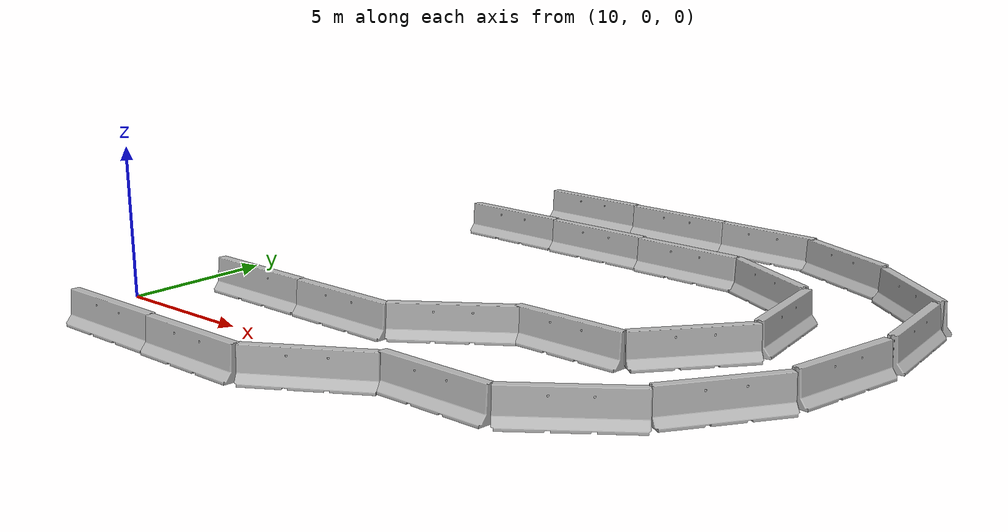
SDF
<sdf version="1.6">
 <world name="default">
  <model name="jersey_barrier_clone_5_clone_clone_0">
   <static>1</static>
   <link name="link">
    <visual name="visual">
     <geometry>
      <mesh><uri>model://jersey_barrier/meshes/jersey_barrier.dae</uri><scale>1 1 1</scale></mesh>
     </geometry>
    </visual>
    <collision name="upright">
     <pose>0 0 0.5715 0 -0 0</pose>
     <geometry><box><size>4.06542 0.3063 1.143</size></box></geometry>
    </collision>
    <collision name="base">
     <pose>0 0 0.032258 0 -0 0</pose>
     <geometry><box><size>4.06542 0.8107 0.064516</size></box></geometry>
    </collision>
    <collision name="base2">
     <pose>0 0 0.1 0 -0 0</pose>
     <geometry><box><size>4.06542 0.65 0.1</size></box></geometry>
    </collision>
    <collision name="base3">
     <pose>0 0 0.2 0 -0 0</pose>
     <geometry><box><size>4.06542 0.5 0.1</size></box></geometry>
    </collision>
    <collision name="left-angle">
     <pose>0 -0.224 0.2401 0.9 -0 0</pose>
     <geometry><box><size>4.06542 0.5 0.064516</size></box></geometry>
    </collision>
    <collision name="right-angle">
     <pose>0 0.224 0.2401 -0.9 0 0</pose>
     <geometry><box><size>4.06542 0.5 0.064516</size></box></geometry>
    </collision>
    <velocity_decay><linear>0</linear><angular>0</angular></velocity_decay>
   </link>
   <pose>12.9787 -2.89825 -0.025828 -0.021605 -0.003365 -0.015417</pose>
  </model>
  <model name="jersey_barrier_clone_5_clone_clone_1">
   <static>1</static>
   <link name="link">
    <visual name="visual">
     <geometry>
      <mesh><uri>model://jersey_barrier/meshes/jersey_barrier.dae</uri><scale>1 1 1</scale></mesh>
     </geometry>
    </visual>
    <collision name="upright">
     <pose>0 0 0.5715 0 -0 0</pose>
     <geometry><box><size>4.06542 0.3063 1.143</size></box></geometry>
    </collision>
    <collision name="base">
     <pose>0 0 0.032258 0 -0 0</pose>
     <geometry><box><size>4.06542 0.8107 0.064516</size></box></geometry>
    </collision>
    <collision name="base2">
     <pose>0 0 0.1 0 -0 0</pose>
     <geometry><box><size>4.06542 0.65 0.1</size></box></geometry>
    </collision>
    <collision name="base3">
     <pose>0 0 0.2 0 -0 0</pose>
     <geometry><box><size>4.06542 0.5 0.1</size></box></geometry>
    </collision>
    <collision name="left-angle">
     <pose>0 -0.224 0.2401 0.9 -0 0</pose>
     <geometry><box><size>4.06542 0.5 0.064516</size></box></geometry>
    </collision>
    <collision name="right-angle">
     <pose>0 0.224 0.2401 -0.9 0 0</pose>
     <geometry><box><size>4.06542 0.5 0.064516</size></box></geometry>
    </collision>
    <velocity_decay><linear>0</linear><angular>0</angular></velocity_decay>
   </link>
   <pose>16.9915 -3.00236 -0.025828 -0.021605 -0.003365 -0.015417</pose>
  </model>
  <model name="jersey_barrier_clone_5_clone_clone_2">
   <static>1</static>
   <link name="link">
    <visual name="visual">
     <geometry>
      <mesh><uri>model://jersey_barrier/meshes/jersey_barrier.dae</uri><scale>1 1 1</scale></mesh>
     </geometry>
    </visual>
    <collision name="upright">
     <pose>0 0 0.5715 0 -0 0</pose>
     <geometry><box><size>4.06542 0.3063 1.143</size></box></geometry>
    </collision>
    <collision name="base">
     <pose>0 0 0.032258 0 -0 0</pose>
     <geometry><box><size>4.06542 0.8107 0.064516</size></box></geometry>
    </collision>
    <collision name="base2">
     <pose>0 0 0.1 0 -0 0</pose>
     <geometry><box><size>4.06542 0.65 0.1</size></box></geometry>
    </collision>
    <collision name="base3">
     <pose>0 0 0.2 0 -0 0</pose>
     <geometry><box><size>4.06542 0.5 0.1</size></box></geometry>
    </collision>
    <collision name="left-angle">
     <pose>0 -0.224 0.2401 0.9 -0 0</pose>
     <geometry><box><size>4.06542 0.5 0.064516</size></box></geometry>
    </collision>
    <collision name="right-angle">
     <pose>0 0.224 0.2401 -0.9 0 0</pose>
     <geometry><box><size>4.06542 0.5 0.064516</size></box></geometry>
    </collision>
    <velocity_decay><linear>0</linear><angular>0</angular></velocity_decay>
   </link>
   <pose>20.7284 -1.89385 -0.047574 -0.019944 0.008963 0.561368</pose>
  </model>
  <model name="jersey_barrier_clone_5_clone_clone_6">
   <static>1</static>
   <link name="link">
    <visual name="visual">
     <geometry>
      <mesh><uri>model://jersey_barrier/meshes/jersey_barrier.dae</uri><scale>1 1 1</scale></mesh>
     </geometry>
    </visual>
    <collision name="upright">
     <pose>0 0 0.5715 0 -0 0</pose>
     <geometry><box><size>4.06542 0.3063 1.143</size></box></geometry>
    </collision>
    <collision name="base">
     <pose>0 0 0.032258 0 -0 0</pose>
     <geometry><box><size>4.06542 0.8107 0.064516</size></box></geometry>
    </collision>
    <collision name="base2">
     <pose>0 0 0.1 0 -0 0</pose>
     <geometry><box><size>4.06542 0.65 0.1</size></box></geometry>
    </collision>
    <collision name="base3">
     <pose>0 0 0.2 0 -0 0</pose>
     <geometry><box><size>4.06542 0.5 0.1</size></box></geometry>
    </collision>
    <collision name="left-angle">
     <pose>0 -0.224 0.2401 0.9 -0 0</pose>
     <geometry><box><size>4.06542 0.5 0.064516</size></box></geometry>
    </collision>
    <collision name="right-angle">
     <pose>0 0.224 0.2401 -0.9 0 0</pose>
     <geometry><box><size>4.06542 0.5 0.064516</size></box></geometry>
    </collision>
    <velocity_decay><linear>0</linear><angular>0</angular></velocity_decay>
   </link>
   <pose>13.4209 2.40844 -0.025828 -0.021605 -0.003365 -0.015417</pose>
  </model>
  <model name="jersey_barrier_clone_5_clone_clone_7">
   <static>1</static>
   <link name="link">
    <visual name="visual">
     <geometry>
      <mesh><uri>model://jersey_barrier/meshes/jersey_barrier.dae</uri><scale>1 1 1</scale></mesh>
     </geometry>
    </visual>
    <collision name="upright">
     <pose>0 0 0.5715 0 -0 0</pose>
     <geometry><box><size>4.06542 0.3063 1.143</size></box></geometry>
    </collision>
    <collision name="base">
     <pose>0 0 0.032258 0 -0 0</pose>
     <geometry><box><size>4.06542 0.8107 0.064516</size></box></geometry>
    </collision>
    <collision name="base2">
     <pose>0 0 0.1 0 -0 0</pose>
     <geometry><box><size>4.06542 0.65 0.1</size></box></geometry>
    </collision>
    <collision name="base3">
     <pose>0 0 0.2 0 -0 0</pose>
     <geometry><box><size>4.06542 0.5 0.1</size></box></geometry>
    </collision>
    <collision name="left-angle">
     <pose>0 -0.224 0.2401 0.9 -0 0</pose>
     <geometry><box><size>4.06542 0.5 0.064516</size></box></geometry>
    </collision>
    <collision name="right-angle">
     <pose>0 0.224 0.2401 -0.9 0 0</pose>
     <geometry><box><size>4.06542 0.5 0.064516</size></box></geometry>
    </collision>
    <velocity_decay><linear>0</linear><angular>0</angular></velocity_decay>
   </link>
   <pose>17.4174 2.35538 -0.033305 -0.021605 -0.003365 -0.015417</pose>
  </model>
  <model name="jersey_barrier_clone_5_clone_clone_8">
   <static>1</static>
   <link name="link">
    <visual name="visual">
     <geometry>
      <mesh><uri>model://jersey_barrier/meshes/jersey_barrier.dae</uri><scale>1 1 1</scale></mesh>
     </geometry>
    </visual>
    <collision name="upright">
     <pose>0 0 0.5715 0 -0 0</pose>
     <geometry><box><size>4.06542 0.3063 1.143</size></box></geometry>
    </collision>
    <collision name="base">
     <pose>0 0 0.032258 0 -0 0</pose>
     <geometry><box><size>4.06542 0.8107 0.064516</size></box></geometry>
    </collision>
    <collision name="base2">
     <pose>0 0 0.1 0 -0 0</pose>
     <geometry><box><size>4.06542 0.65 0.1</size></box></geometry>
    </collision>
    <collision name="base3">
     <pose>0 0 0.2 0 -0 0</pose>
     <geometry><box><size>4.06542 0.5 0.1</size></box></geometry>
    </collision>
    <collision name="left-angle">
     <pose>0 -0.224 0.2401 0.9 -0 0</pose>
     <geometry><box><size>4.06542 0.5 0.064516</size></box></geometry>
    </collision>
    <collision name="right-angle">
     <pose>0 0.224 0.2401 -0.9 0 0</pose>
     <geometry><box><size>4.06542 0.5 0.064516</size></box></geometry>
    </collision>
    <velocity_decay><linear>0</linear><angular>0</angular></velocity_decay>
   </link>
   <pose>20.9753 3.57828 -0.025828 -0.01915 0.010554 0.64269</pose>
  </model>
  <model name="jersey_barrier_clone_5_clone_clone_9">
   <static>1</static>
   <link name="link">
    <visual name="visual">
     <geometry>
      <mesh><uri>model://jersey_barrier/meshes/jersey_barrier.dae</uri><scale>1 1 1</scale></mesh>
     </geometry>
    </visual>
    <collision name="upright">
     <pose>0 0 0.5715 0 -0 0</pose>
     <geometry><box><size>4.06542 0.3063 1.143</size></box></geometry>
    </collision>
    <collision name="base">
     <pose>0 0 0.032258 0 -0 0</pose>
     <geometry><box><size>4.06542 0.8107 0.064516</size></box></geometry>
    </collision>
    <collision name="base2">
     <pose>0 0 0.1 0 -0 0</pose>
     <geometry><box><size>4.06542 0.65 0.1</size></box></geometry>
    </collision>
    <collision name="base3">
     <pose>0 0 0.2 0 -0 0</pose>
     <geometry><box><size>4.06542 0.5 0.1</size></box></geometry>
    </collision>
    <collision name="left-angle">
     <pose>0 -0.224 0.2401 0.9 -0 0</pose>
     <geometry><box><size>4.06542 0.5 0.064516</size></box></geometry>
    </collision>
    <collision name="right-angle">
     <pose>0 0.224 0.2401 -0.9 0 0</pose>
     <geometry><box><size>4.06542 0.5 0.064516</size></box></geometry>
    </collision>
    <velocity_decay><linear>0</linear><angular>0</angular></velocity_decay>
   </link>
   <pose>24.4366 -0.784009 -0.025828 -0.021605 -0.003365 -0.015417</pose>
  </model>
  <model name="jersey_barrier_clone_5_clone_clone_10">
   <static>1</static>
   <link name="link">
    <visual name="visual">
     <geometry>
      <mesh><uri>model://jersey_barrier/meshes/jersey_barrier.dae</uri><scale>1 1 1</scale></mesh>
     </geometry>
    </visual>
    <collision name="upright">
     <pose>0 0 0.5715 0 -0 0</pose>
     <geometry><box><size>4.06542 0.3063 1.143</size></box></geometry>
    </collision>
    <collision name="base">
     <pose>0 0 0.032258 0 -0 0</pose>
     <geometry><box><size>4.06542 0.8107 0.064516</size></box></geometry>
    </collision>
    <collision name="base2">
     <pose>0 0 0.1 0 -0 0</pose>
     <geometry><box><size>4.06542 0.65 0.1</size></box></geometry>
    </collision>
    <collision name="base3">
     <pose>0 0 0.2 0 -0 0</pose>
     <geometry><box><size>4.06542 0.5 0.1</size></box></geometry>
    </collision>
    <collision name="left-angle">
     <pose>0 -0.224 0.2401 0.9 -0 0</pose>
     <geometry><box><size>4.06542 0.5 0.064516</size></box></geometry>
    </collision>
    <collision name="right-angle">
     <pose>0 0.224 0.2401 -0.9 0 0</pose>
     <geometry><box><size>4.06542 0.5 0.064516</size></box></geometry>
    </collision>
    <velocity_decay><linear>0</linear><angular>0</angular></velocity_decay>
   </link>
   <pose>24.4589 4.76762 -0.025828 -0.021605 -0.003365 -0.015417</pose>
  </model>
  <model name="jersey_barrier_clone_5_clone_clone_11">
   <static>1</static>
   <link name="link">
    <visual name="visual">
     <geometry>
      <mesh><uri>model://jersey_barrier/meshes/jersey_barrier.dae</uri><scale>1 1 1</scale></mesh>
     </geometry>
    </visual>
    <collision name="upright">
     <pose>0 0 0.5715 0 -0 0</pose>
     <geometry><box><size>4.06542 0.3063 1.143</size></box></geometry>
    </collision>
    <collision name="base">
     <pose>0 0 0.032258 0 -0 0</pose>
     <geometry><box><size>4.06542 0.8107 0.064516</size></box></geometry>
    </collision>
    <collision name="base2">
     <pose>0 0 0.1 0 -0 0</pose>
     <geometry><box><size>4.06542 0.65 0.1</size></box></geometry>
    </collision>
    <collision name="base3">
     <pose>0 0 0.2 0 -0 0</pose>
     <geometry><box><size>4.06542 0.5 0.1</size></box></geometry>
    </collision>
    <collision name="left-angle">
     <pose>0 -0.224 0.2401 0.9 -0 0</pose>
     <geometry><box><size>4.06542 0.5 0.064516</size></box></geometry>
    </collision>
    <collision name="right-angle">
     <pose>0 0.224 0.2401 -0.9 0 0</pose>
     <geometry><box><size>4.06542 0.5 0.064516</size></box></geometry>
    </collision>
    <velocity_decay><linear>0</linear><angular>0</angular></velocity_decay>
   </link>
   <pose>28.0977 0.398126 -0.025828 -0.018893 0.011008 0.666588</pose>
  </model>
  <model name="jersey_barrier_clone_5_clone_clone_12">
   <static>1</static>
   <link name="link">
    <visual name="visual">
     <geometry>
      <mesh><uri>model://jersey_barrier/meshes/jersey_barrier.dae</uri><scale>1 1 1</scale></mesh>
     </geometry>
    </visual>
    <collision name="upright">
     <pose>0 0 0.5715 0 -0 0</pose>
     <geometry><box><size>4.06542 0.3063 1.143</size></box></geometry>
    </collision>
    <collision name="base">
     <pose>0 0 0.032258 0 -0 0</pose>
     <geometry><box><size>4.06542 0.8107 0.064516</size></box></geometry>
    </collision>
    <collision name="base2">
     <pose>0 0 0.1 0 -0 0</pose>
     <geometry><box><size>4.06542 0.65 0.1</size></box></geometry>
    </collision>
    <collision name="base3">
     <pose>0 0 0.2 0 -0 0</pose>
     <geometry><box><size>4.06542 0.5 0.1</size></box></geometry>
    </collision>
    <collision name="left-angle">
     <pose>0 -0.224 0.2401 0.9 -0 0</pose>
     <geometry><box><size>4.06542 0.5 0.064516</size></box></geometry>
    </collision>
    <collision name="right-angle">
     <pose>0 0.224 0.2401 -0.9 0 0</pose>
     <geometry><box><size>4.06542 0.5 0.064516</size></box></geometry>
    </collision>
    <velocity_decay><linear>0</linear><angular>0</angular></velocity_decay>
   </link>
   <pose>30.6938 3.39642 -0.025828 -0.013816 0.016948 1.02588</pose>
  </model>
  <model name="jersey_barrier_clone_5_clone_clone_13">
   <static>1</static>
   <link name="link">
    <visual name="visual">
     <geometry>
      <mesh><uri>model://jersey_barrier/meshes/jersey_barrier.dae</uri><scale>1 1 1</scale></mesh>
     </geometry>
    </visual>
    <collision name="upright">
     <pose>0 0 0.5715 0 -0 0</pose>
     <geometry><box><size>4.06542 0.3063 1.143</size></box></geometry>
    </collision>
    <collision name="base">
     <pose>0 0 0.032258 0 -0 0</pose>
     <geometry><box><size>4.06542 0.8107 0.064516</size></box></geometry>
    </collision>
    <collision name="base2">
     <pose>0 0 0.1 0 -0 0</pose>
     <geometry><box><size>4.06542 0.65 0.1</size></box></geometry>
    </collision>
    <collision name="base3">
     <pose>0 0 0.2 0 -0 0</pose>
     <geometry><box><size>4.06542 0.5 0.1</size></box></geometry>
    </collision>
    <collision name="left-angle">
     <pose>0 -0.224 0.2401 0.9 -0 0</pose>
     <geometry><box><size>4.06542 0.5 0.064516</size></box></geometry>
    </collision>
    <collision name="right-angle">
     <pose>0 0.224 0.2401 -0.9 0 0</pose>
     <geometry><box><size>4.06542 0.5 0.064516</size></box></geometry>
    </collision>
    <velocity_decay><linear>0</linear><angular>0</angular></velocity_decay>
   </link>
   <pose>32.0301 7.17534 -0.025828 -0.005995 0.021028 1.43213</pose>
  </model>
  <model name="jersey_barrier_clone_5_clone_clone_14">
   <static>1</static>
   <link name="link">
    <visual name="visual">
     <geometry>
      <mesh><uri>model://jersey_barrier/meshes/jersey_barrier.dae</uri><scale>1 1 1</scale></mesh>
     </geometry>
    </visual>
    <collision name="upright">
     <pose>0 0 0.5715 0 -0 0</pose>
     <geometry><box><size>4.06542 0.3063 1.143</size></box></geometry>
    </collision>
    <collision name="base">
     <pose>0 0 0.032258 0 -0 0</pose>
     <geometry><box><size>4.06542 0.8107 0.064516</size></box></geometry>
    </collision>
    <collision name="base2">
     <pose>0 0 0.1 0 -0 0</pose>
     <geometry><box><size>4.06542 0.65 0.1</size></box></geometry>
    </collision>
    <collision name="base3">
     <pose>0 0 0.2 0 -0 0</pose>
     <geometry><box><size>4.06542 0.5 0.1</size></box></geometry>
    </collision>
    <collision name="left-angle">
     <pose>0 -0.224 0.2401 0.9 -0 0</pose>
     <geometry><box><size>4.06542 0.5 0.064516</size></box></geometry>
    </collision>
    <collision name="right-angle">
     <pose>0 0.224 0.2401 -0.9 0 0</pose>
     <geometry><box><size>4.06542 0.5 0.064516</size></box></geometry>
    </collision>
    <velocity_decay><linear>0</linear><angular>0</angular></velocity_decay>
   </link>
   <pose>18.5289 13.7055 -0.025828 -0.021605 -0.003365 -0.015417</pose>
  </model>
  <model name="jersey_barrier_clone_5_clone_clone_15">
   <static>1</static>
   <link name="link">
    <visual name="visual">
     <geometry>
      <mesh><uri>model://jersey_barrier/meshes/jersey_barrier.dae</uri><scale>1 1 1</scale></mesh>
     </geometry>
    </visual>
    <collision name="upright">
     <pose>0 0 0.5715 0 -0 0</pose>
     <geometry><box><size>4.06542 0.3063 1.143</size></box></geometry>
    </collision>
    <collision name="base">
     <pose>0 0 0.032258 0 -0 0</pose>
     <geometry><box><size>4.06542 0.8107 0.064516</size></box></geometry>
    </collision>
    <collision name="base2">
     <pose>0 0 0.1 0 -0 0</pose>
     <geometry><box><size>4.06542 0.65 0.1</size></box></geometry>
    </collision>
    <collision name="base3">
     <pose>0 0 0.2 0 -0 0</pose>
     <geometry><box><size>4.06542 0.5 0.1</size></box></geometry>
    </collision>
    <collision name="left-angle">
     <pose>0 -0.224 0.2401 0.9 -0 0</pose>
     <geometry><box><size>4.06542 0.5 0.064516</size></box></geometry>
    </collision>
    <collision name="right-angle">
     <pose>0 0.224 0.2401 -0.9 0 0</pose>
     <geometry><box><size>4.06542 0.5 0.064516</size></box></geometry>
    </collision>
    <velocity_decay><linear>0</linear><angular>0</angular></velocity_decay>
   </link>
   <pose>28.4742 9.97368 -0.025828 0.000985 0.021843 1.75492</pose>
  </model>
  <model name="jersey_barrier_clone_5_clone_clone_16">
   <static>1</static>
   <link name="link">
    <visual name="visual">
     <geometry>
      <mesh><uri>model://jersey_barrier/meshes/jersey_barrier.dae</uri><scale>1 1 1</scale></mesh>
     </geometry>
    </visual>
    <collision name="upright">
     <pose>0 0 0.5715 0 -0 0</pose>
     <geometry><box><size>4.06542 0.3063 1.143</size></box></geometry>
    </collision>
    <collision name="base">
     <pose>0 0 0.032258 0 -0 0</pose>
     <geometry><box><size>4.06542 0.8107 0.064516</size></box></geometry>
    </collision>
    <collision name="base2">
     <pose>0 0 0.1 0 -0 0</pose>
     <geometry><box><size>4.06542 0.65 0.1</size></box></geometry>
    </collision>
    <collision name="base3">
     <pose>0 0 0.2 0 -0 0</pose>
     <geometry><box><size>4.06542 0.5 0.1</size></box></geometry>
    </collision>
    <collision name="left-angle">
     <pose>0 -0.224 0.2401 0.9 -0 0</pose>
     <geometry><box><size>4.06542 0.5 0.064516</size></box></geometry>
    </collision>
    <collision name="right-angle">
     <pose>0 0.224 0.2401 -0.9 0 0</pose>
     <geometry><box><size>4.06542 0.5 0.064516</size></box></geometry>
    </collision>
    <velocity_decay><linear>0</linear><angular>0</angular></velocity_decay>
   </link>
   <pose>22.5061 13.5717 -0.025828 -0.021605 -0.003365 -0.015417</pose>
  </model>
  <model name="jersey_barrier_clone_5_clone_clone_17">
   <static>1</static>
   <link name="link">
    <visual name="visual">
     <geometry>
      <mesh><uri>model://jersey_barrier/meshes/jersey_barrier.dae</uri><scale>1 1 1</scale></mesh>
     </geometry>
    </visual>
    <collision name="upright">
     <pose>0 0 0.5715 0 -0 0</pose>
     <geometry><box><size>4.06542 0.3063 1.143</size></box></geometry>
    </collision>
    <collision name="base">
     <pose>0 0 0.032258 0 -0 0</pose>
     <geometry><box><size>4.06542 0.8107 0.064516</size></box></geometry>
    </collision>
    <collision name="base2">
     <pose>0 0 0.1 0 -0 0</pose>
     <geometry><box><size>4.06542 0.65 0.1</size></box></geometry>
    </collision>
    <collision name="base3">
     <pose>0 0 0.2 0 -0 0</pose>
     <geometry><box><size>4.06542 0.5 0.1</size></box></geometry>
    </collision>
    <collision name="left-angle">
     <pose>0 -0.224 0.2401 0.9 -0 0</pose>
     <geometry><box><size>4.06542 0.5 0.064516</size></box></geometry>
    </collision>
    <collision name="right-angle">
     <pose>0 0.224 0.2401 -0.9 0 0</pose>
     <geometry><box><size>4.06542 0.5 0.064516</size></box></geometry>
    </collision>
    <velocity_decay><linear>0</linear><angular>0</angular></velocity_decay>
   </link>
   <pose>27.6821 6.40937 -0.025828 -0.015184 0.015734 0.942214</pose>
  </model>
  <model name="jersey_barrier_clone_5_clone_clone_18">
   <static>1</static>
   <link name="link">
    <visual name="visual">
     <geometry>
      <mesh><uri>model://jersey_barrier/meshes/jersey_barrier.dae</uri><scale>1 1 1</scale></mesh>
     </geometry>
    </visual>
    <collision name="upright">
     <pose>0 0 0.5715 0 -0 0</pose>
     <geometry><box><size>4.06542 0.3063 1.143</size></box></geometry>
    </collision>
    <collision name="base">
     <pose>0 0 0.032258 0 -0 0</pose>
     <geometry><box><size>4.06542 0.8107 0.064516</size></box></geometry>
    </collision>
    <collision name="base2">
     <pose>0 0 0.1 0 -0 0</pose>
     <geometry><box><size>4.06542 0.65 0.1</size></box></geometry>
    </collision>
    <collision name="base3">
     <pose>0 0 0.2 0 -0 0</pose>
     <geometry><box><size>4.06542 0.5 0.1</size></box></geometry>
    </collision>
    <collision name="left-angle">
     <pose>0 -0.224 0.2401 0.9 -0 0</pose>
     <geometry><box><size>4.06542 0.5 0.064516</size></box></geometry>
    </collision>
    <collision name="right-angle">
     <pose>0 0.224 0.2401 -0.9 0 0</pose>
     <geometry><box><size>4.06542 0.5 0.064516</size></box></geometry>
    </collision>
    <velocity_decay><linear>0</linear><angular>0</angular></velocity_decay>
   </link>
   <pose>32.0841 11.2337 -0.025828 -0.000317 -0.021863 -1.41724</pose>
  </model>
  <model name="jersey_barrier_clone_5_clone_clone_19">
   <static>1</static>
   <link name="link">
    <visual name="visual">
     <geometry>
      <mesh><uri>model://jersey_barrier/meshes/jersey_barrier.dae</uri><scale>1 1 1</scale></mesh>
     </geometry>
    </visual>
    <collision name="upright">
     <pose>0 0 0.5715 0 -0 0</pose>
     <geometry><box><size>4.06542 0.3063 1.143</size></box></geometry>
    </collision>
    <collision name="base">
     <pose>0 0 0.032258 0 -0 0</pose>
     <geometry><box><size>4.06542 0.8107 0.064516</size></box></geometry>
    </collision>
    <collision name="base2">
     <pose>0 0 0.1 0 -0 0</pose>
     <geometry><box><size>4.06542 0.65 0.1</size></box></geometry>
    </collision>
    <collision name="base3">
     <pose>0 0 0.2 0 -0 0</pose>
     <geometry><box><size>4.06542 0.5 0.1</size></box></geometry>
    </collision>
    <collision name="left-angle">
     <pose>0 -0.224 0.2401 0.9 -0 0</pose>
     <geometry><box><size>4.06542 0.5 0.064516</size></box></geometry>
    </collision>
    <collision name="right-angle">
     <pose>0 0.224 0.2401 -0.9 0 0</pose>
     <geometry><box><size>4.06542 0.5 0.064516</size></box></geometry>
    </collision>
    <velocity_decay><linear>0</linear><angular>0</angular></velocity_decay>
   </link>
   <pose>23.2108 17.3995 -0.025828 -0.021605 -0.003365 -0.015417</pose>
  </model>
  <model name="jersey_barrier_clone_5_clone_clone_20">
   <static>1</static>
   <link name="link">
    <visual name="visual">
     <geometry>
      <mesh><uri>model://jersey_barrier/meshes/jersey_barrier.dae</uri><scale>1 1 1</scale></mesh>
     </geometry>
    </visual>
    <collision name="upright">
     <pose>0 0 0.5715 0 -0 0</pose>
     <geometry><box><size>4.06542 0.3063 1.143</size></box></geometry>
    </collision>
    <collision name="base">
     <pose>0 0 0.032258 0 -0 0</pose>
     <geometry><box><size>4.06542 0.8107 0.064516</size></box></geometry>
    </collision>
    <collision name="base2">
     <pose>0 0 0.1 0 -0 0</pose>
     <geometry><box><size>4.06542 0.65 0.1</size></box></geometry>
    </collision>
    <collision name="base3">
     <pose>0 0 0.2 0 -0 0</pose>
     <geometry><box><size>4.06542 0.5 0.1</size></box></geometry>
    </collision>
    <collision name="left-angle">
     <pose>0 -0.224 0.2401 0.9 -0 0</pose>
     <geometry><box><size>4.06542 0.5 0.064516</size></box></geometry>
    </collision>
    <collision name="right-angle">
     <pose>0 0.224 0.2401 -0.9 0 0</pose>
     <geometry><box><size>4.06542 0.5 0.064516</size></box></geometry>
    </collision>
    <velocity_decay><linear>0</linear><angular>0</angular></velocity_decay>
   </link>
   <pose>26.9125 16.5648 -0.025828 -0.018649 -0.011417 -0.410209</pose>
  </model>
  <model name="jersey_barrier_clone_5_clone_clone_21">
   <static>1</static>
   <link name="link">
    <visual name="visual">
     <geometry>
      <mesh><uri>model://jersey_barrier/meshes/jersey_barrier.dae</uri><scale>1 1 1</scale></mesh>
     </geometry>
    </visual>
    <collision name="upright">
     <pose>0 0 0.5715 0 -0 0</pose>
     <geometry><box><size>4.06542 0.3063 1.143</size></box></geometry>
    </collision>
    <collision name="base">
     <pose>0 0 0.032258 0 -0 0</pose>
     <geometry><box><size>4.06542 0.8107 0.064516</size></box></geometry>
    </collision>
    <collision name="base2">
     <pose>0 0 0.1 0 -0 0</pose>
     <geometry><box><size>4.06542 0.65 0.1</size></box></geometry>
    </collision>
    <collision name="base3">
     <pose>0 0 0.2 0 -0 0</pose>
     <geometry><box><size>4.06542 0.5 0.1</size></box></geometry>
    </collision>
    <collision name="left-angle">
     <pose>0 -0.224 0.2401 0.9 -0 0</pose>
     <geometry><box><size>4.06542 0.5 0.064516</size></box></geometry>
    </collision>
    <collision name="right-angle">
     <pose>0 0.224 0.2401 -0.9 0 0</pose>
     <geometry><box><size>4.06542 0.5 0.064516</size></box></geometry>
    </collision>
    <velocity_decay><linear>0</linear><angular>0</angular></velocity_decay>
   </link>
   <pose>30.3904 14.4535 -0.025828 -0.01524 -0.01568 -0.660471</pose>
  </model>
  <model name="jersey_barrier_clone_5_clone_clone_22">
   <static>1</static>
   <link name="link">
    <visual name="visual">
     <geometry>
      <mesh><uri>model://jersey_barrier/meshes/jersey_barrier.dae</uri><scale>1 1 1</scale></mesh>
     </geometry>
    </visual>
    <collision name="upright">
     <pose>0 0 0.5715 0 -0 0</pose>
     <geometry><box><size>4.06542 0.3063 1.143</size></box></geometry>
    </collision>
    <collision name="base">
     <pose>0 0 0.032258 0 -0 0</pose>
     <geometry><box><size>4.06542 0.8107 0.064516</size></box></geometry>
    </collision>
    <collision name="base2">
     <pose>0 0 0.1 0 -0 0</pose>
     <geometry><box><size>4.06542 0.65 0.1</size></box></geometry>
    </collision>
    <collision name="base3">
     <pose>0 0 0.2 0 -0 0</pose>
     <geometry><box><size>4.06542 0.5 0.1</size></box></geometry>
    </collision>
    <collision name="left-angle">
     <pose>0 -0.224 0.2401 0.9 -0 0</pose>
     <geometry><box><size>4.06542 0.5 0.064516</size></box></geometry>
    </collision>
    <collision name="right-angle">
     <pose>0 0.224 0.2401 -0.9 0 0</pose>
     <geometry><box><size>4.06542 0.5 0.064516</size></box></geometry>
    </collision>
    <velocity_decay><linear>0</linear><angular>0</angular></velocity_decay>
   </link>
   <pose>26.2444 12.7589 -0.025828 -0.018026 -0.012376 -0.462532</pose>
  </model>
  <model name="jersey_barrier_clone_5_clone_clone_23">
   <static>1</static>
   <link name="link">
    <visual name="visual">
     <geometry>
      <mesh><uri>model://jersey_barrier/meshes/jersey_barrier.dae</uri><scale>1 1 1</scale></mesh>
     </geometry>
    </visual>
    <collision name="upright">
     <pose>0 0 0.5715 0 -0 0</pose>
     <geometry><box><size>4.06542 0.3063 1.143</size></box></geometry>
    </collision>
    <collision name="base">
     <pose>0 0 0.032258 0 -0 0</pose>
     <geometry><box><size>4.06542 0.8107 0.064516</size></box></geometry>
    </collision>
    <collision name="base2">
     <pose>0 0 0.1 0 -0 0</pose>
     <geometry><box><size>4.06542 0.65 0.1</size></box></geometry>
    </collision>
    <collision name="base3">
     <pose>0 0 0.2 0 -0 0</pose>
     <geometry><box><size>4.06542 0.5 0.1</size></box></geometry>
    </collision>
    <collision name="left-angle">
     <pose>0 -0.224 0.2401 0.9 -0 0</pose>
     <geometry><box><size>4.06542 0.5 0.064516</size></box></geometry>
    </collision>
    <collision name="right-angle">
     <pose>0 0.224 0.2401 -0.9 0 0</pose>
     <geometry><box><size>4.06542 0.5 0.064516</size></box></geometry>
    </collision>
    <velocity_decay><linear>0</linear><angular>0</angular></velocity_decay>
   </link>
   <pose>19.4347 17.4288 -0.025828 -0.021605 -0.003365 -0.015417</pose>
  </model>
  <model name="jersey_barrier_clone_5_clone_clone_24">
   <static>1</static>
   <link name="link">
    <visual name="visual">
     <geometry>
      <mesh><uri>model://jersey_barrier/meshes/jersey_barrier.dae</uri><scale>1 1 1</scale></mesh>
     </geometry>
    </visual>
    <collision name="upright">
     <pose>0 0 0.5715 0 -0 0</pose>
     <geometry><box><size>4.06542 0.3063 1.143</size></box></geometry>
    </collision>
    <collision name="base">
     <pose>0 0 0.032258 0 -0 0</pose>
     <geometry><box><size>4.06542 0.8107 0.064516</size></box></geometry>
    </collision>
    <collision name="base2">
     <pose>0 0 0.1 0 -0 0</pose>
     <geometry><box><size>4.06542 0.65 0.1</size></box></geometry>
    </collision>
    <collision name="base3">
     <pose>0 0 0.2 0 -0 0</pose>
     <geometry><box><size>4.06542 0.5 0.1</size></box></geometry>
    </collision>
    <collision name="left-angle">
     <pose>0 -0.224 0.2401 0.9 -0 0</pose>
     <geometry><box><size>4.06542 0.5 0.064516</size></box></geometry>
    </collision>
    <collision name="right-angle">
     <pose>0 0.224 0.2401 -0.9 0 0</pose>
     <geometry><box><size>4.06542 0.5 0.064516</size></box></geometry>
    </collision>
    <velocity_decay><linear>0</linear><angular>0</angular></velocity_decay>
   </link>
   <pose>15.3836 17.5192 -0.025828 -0.021605 -0.003365 -0.015417</pose>
  </model>
  <model name="jersey_barrier_clone_5_clone_clone_26">
   <static>1</static>
   <link name="link">
    <visual name="visual">
     <geometry>
      <mesh><uri>model://jersey_barrier/meshes/jersey_barrier.dae</uri><scale>1 1 1</scale></mesh>
     </geometry>
    </visual>
    <collision name="upright">
     <pose>0 0 0.5715 0 -0 0</pose>
     <geometry><box><size>4.06542 0.3063 1.143</size></box></geometry>
    </collision>
    <collision name="base">
     <pose>0 0 0.032258 0 -0 0</pose>
     <geometry><box><size>4.06542 0.8107 0.064516</size></box></geometry>
    </collision>
    <collision name="base2">
     <pose>0 0 0.1 0 -0 0</pose>
     <geometry><box><size>4.06542 0.65 0.1</size></box></geometry>
    </collision>
    <collision name="base3">
     <pose>0 0 0.2 0 -0 0</pose>
     <geometry><box><size>4.06542 0.5 0.1</size></box></geometry>
    </collision>
    <collision name="left-angle">
     <pose>0 -0.224 0.2401 0.9 -0 0</pose>
     <geometry><box><size>4.06542 0.5 0.064516</size></box></geometry>
    </collision>
    <collision name="right-angle">
     <pose>0 0.224 0.2401 -0.9 0 0</pose>
     <geometry><box><size>4.06542 0.5 0.064516</size></box></geometry>
    </collision>
    <velocity_decay><linear>0</linear><angular>0</angular></velocity_decay>
   </link>
   <pose>14.4909 13.8033 -0.025828 -0.021605 -0.003365 -0.015417</pose>
  </model>
 </world>
</sdf>
